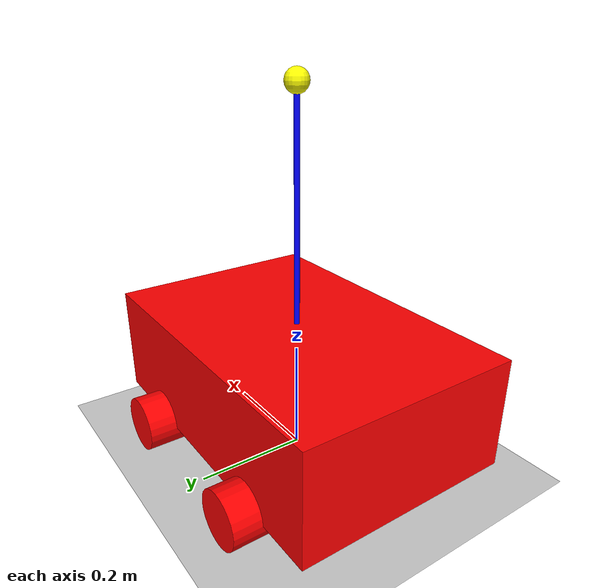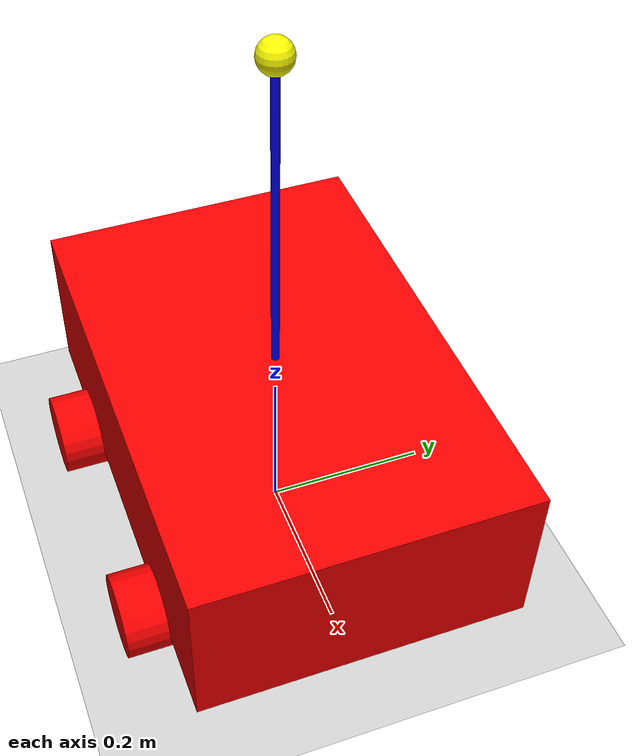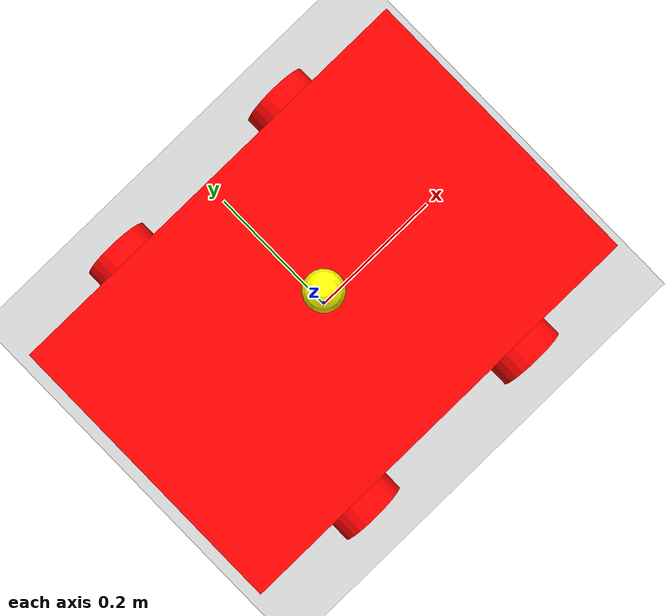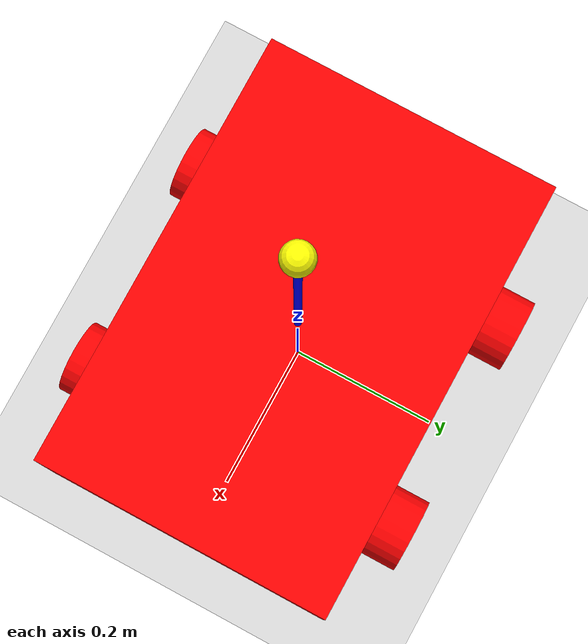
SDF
<sdf version='1.10'>
  <world name='empty'>
    <physics name='1ms' type='ignored'>
      <max_step_size>0.001</max_step_size>
      <real_time_factor>1</real_time_factor>
      <real_time_update_rate>1000</real_time_update_rate>
    </physics>
    <plugin name='gz::sim::systems::Physics' filename='gz-sim-physics-system'/>
    <plugin name='gz::sim::systems::UserCommands' filename='gz-sim-user-commands-system'/>
    <plugin name='gz::sim::systems::SceneBroadcaster' filename='gz-sim-scene-broadcaster-system'/>
    <plugin name='gz::sim::systems::Contact' filename='gz-sim-contact-system'/>
    <plugin filename = "gz-sim-apply-link-wrench-system" name = "gz::sim::systems::ApplyLinkWrench"/>
    <gravity>0 0 -9.8000000000000007</gravity>
    <magnetic_field>5.5644999999999998e-06 2.2875799999999999e-05 -4.2388400000000002e-05</magnetic_field>
    <atmosphere type='adiabatic'/>
    <scene>
      <ambient>0.400000006 0.400000006 0.400000006 1</ambient>
      <background>0.699999988 0.699999988 0.699999988 1</background>
      <shadows>true</shadows>
    </scene>
    <model name='ground_plane'>
      <static>true</static>
      <link name='link'>
        <collision name='collision'>
          <geometry>
            <plane>
              <normal>0 0 1</normal>
              <size>100 100</size>
            </plane>
          </geometry>
          <surface>
            <friction>
              <ode/>
            </friction>
            <bounce/>
            <contact/>
          </surface>
        </collision>
        <visual name='visual'>
          <geometry>
            <plane>
              <normal>0 0 1</normal>
              <size>100 100</size>
            </plane>
          </geometry>
          <material>
            <ambient>0.800000012 0.800000012 0.800000012 1</ambient>
            <diffuse>0.800000012 0.800000012 0.800000012 1</diffuse>
            <specular>0.800000012 0.800000012 0.800000012 1</specular>
          </material>
        </visual>
        <pose>0 0 0 0 0 0</pose>
        <inertial>
          <pose>0 0 0 0 0 0</pose>
          <mass>1</mass>
          <inertia>
            <ixx>1</ixx>
            <ixy>0</ixy>
            <ixz>0</ixz>
            <iyy>1</iyy>
            <iyz>0</iyz>
            <izz>1</izz>
          </inertia>
        </inertial>
        <enable_wind>false</enable_wind>
      </link>
      <pose>0 0 0 0 0 0</pose>
      <self_collide>false</self_collide>
    </model>
    <model name='cartpole_balancer'>
      <link name='base_link'>
        <inertial>
          <pose>0 0 0.14999999999999999 0 0 0</pose>
          <mass>5</mass>
          <inertia>
            <ixx>0.083333333333333329</ixx>
            <ixy>0</ixy>
            <ixz>0</ixz>
            <iyy>0.1666666666666666</iyy>
            <iyz>0</iyz>
            <izz>0.2166666666666667</izz>
          </inertia>
        </inertial>
        <collision name='base_link_fixed_joint_lump__base_link_collision'>
          <pose>0 0 0.14999999999999999 0 0 0</pose>
          <geometry>
            <box>
              <size>0.59999999999999998 0.40000000000000002 0.20000000000000001</size>
            </box>
          </geometry>
          <surface>
            <friction>
              <ode/>
            </friction>
            <bounce/>
            <contact/>
          </surface>
        </collision>
        <visual name='base_link_fixed_joint_lump__visual_visual'>
          <pose>0 0 0.14999999999999999 0 0 0</pose>
          <geometry>
            <box>
              <size>0.59999999999999998 0.40000000000000002 0.20000000000000001</size>
            </box>
          </geometry>
          <material>
            <diffuse>1 0 0 1</diffuse>
            <ambient>1 0 0 1</ambient>
          </material>
        </visual>
        <pose>0 0 0 0 0 0</pose>
        <enable_wind>false</enable_wind>
      </link>
      <joint name='cartpole_base_joint' type='revolute'>
        <pose>0 0 0 0 0 0</pose>
        <parent>base_link</parent>
        <child>cartpole_link</child>
        <axis>
          <xyz>0 1 0</xyz>
          <limit>
            <lower>-0.69999999999999996</lower>
            <upper>0.69999999999999996</upper>
          </limit>
          <dynamics>
            <spring_reference>0</spring_reference>
            <spring_stiffness>0</spring_stiffness>
            <damping>0.5</damping>
            <friction>0</friction>
          </dynamics>
        </axis>
      </joint>
      <link name='cartpole_link'>
        <pose>0 5.8774717541114375e-39 0.25 6.4921011317425931e-45 -2.3361752918385383e-23 -7.5833431280470289e-68</pose>
        <inertial>
          <pose>0 0 0.36666666666666681 0 0 0</pose>
          <mass>0.59999999999999998</mass>
          <inertia>
            <ixx>0.0047472916666666393</ixx>
            <ixy>0</ixy>
            <ixz>0</ixz>
            <iyy>0.0047472916666666393</iyy>
            <iyz>0</iyz>
            <izz>8.125000000000001e-05</izz>
          </inertia>
        </inertial>
        <collision name='cartpole_link_collision'>
          <pose>0 0 0.20000000000000001 0 0 0</pose>
          <geometry>
            <cylinder>
              <length>0.40000000000000002</length>
              <radius>0.0050000000000000001</radius>
            </cylinder>
          </geometry>
          <surface>
            <friction>
              <ode/>
            </friction>
            <bounce/>
            <contact/>
          </surface>
        </collision>
        <collision name='cartpole_link_fixed_joint_lump__bob_link_collision_1'>
          <pose>0 0 0.40000000000000002 0 0 0</pose>
          <geometry>
            <sphere>
              <radius>0.02</radius>
            </sphere>
          </geometry>
          <surface>
            <friction>
              <ode/>
            </friction>
            <bounce/>
            <contact/>
          </surface>
        </collision>
        <visual name='cartpole_link_fixed_joint_lump__visual_visual'>
          <pose>0 0 0.20000000000000001 0 0 0</pose>
          <geometry>
            <cylinder>
              <length>0.40000000000000002</length>
              <radius>0.0050000000000000001</radius>
            </cylinder>
          </geometry>
          <material>
            <diffuse>0 0 1 1</diffuse>
            <ambient>0 0 1 1</ambient>
          </material>
        </visual>
        <visual name='cartpole_link_fixed_joint_lump__visual_visual_1'>
          <pose>0 0 0.40000000000000002 0 0 0</pose>
          <geometry>
            <sphere>
              <radius>0.02</radius>
            </sphere>
          </geometry>
          <material>
            <diffuse>1 1 0 1</diffuse>
            <ambient>1 1 0 1</ambient>
          </material>
        </visual>
        <enable_wind>false</enable_wind>
      </link>
      <joint name='front_left_wheel_joint' type='revolute'>
        <pose>0 0 0 0 0 0</pose>
        <parent>base_link</parent>
        <child>front_left_wheel_link</child>
        <axis>
          <xyz>0 1 0</xyz>
          <limit>
            <lower>-inf</lower>
            <upper>inf</upper>
            <effort>inf</effort>
            <velocity>inf</velocity>
            <stiffness>100000000</stiffness>
            <dissipation>1</dissipation>
          </limit>
          <dynamics>
            <spring_reference>0</spring_reference>
            <spring_stiffness>0</spring_stiffness>
            <damping>0</damping>
            <friction>0</friction>
          </dynamics>
        </axis>
      </joint>
      <link name='front_left_wheel_link'>
        <pose>0.14999999999999999 0.20000000000000001 0.049999999999999989 -8.3981465539371425e-43 3.022063593652105e-21 -1.2689866477404162e-63</pose>
        <inertial>
          <pose>0 0 0 0 0 0</pose>
          <mass>1</mass>
          <inertia>
            <ixx>0.001458333333333333</ixx>
            <ixy>0</ixy>
            <ixz>0</ixz>
            <iyy>0.001458333333333333</iyy>
            <iyz>0</iyz>
            <izz>0.00125</izz>
          </inertia>
        </inertial>
        <collision name='front_left_wheel_link_collision'>
          <pose>0 0 0 1.5707963267948959 0 0</pose>
          <geometry>
            <cylinder>
              <length>0.10000000000000001</length>
              <radius>0.050000000000000003</radius>
            </cylinder>
          </geometry>
          <surface>
            <friction>
              <ode/>
            </friction>
            <bounce/>
            <contact/>
          </surface>
        </collision>
        <visual name='front_left_wheel_link_fixed_joint_lump__visual_2_visual'>
          <pose>0 0 0 1.5707963267948959 0 0</pose>
          <geometry>
            <cylinder>
              <length>0.10000000000000001</length>
              <radius>0.050000000000000003</radius>
            </cylinder>
          </geometry>
          <material>
            <diffuse>1 0 0 1</diffuse>
            <ambient>1 0 0 1</ambient>
          </material>
        </visual>
        <enable_wind>false</enable_wind>
      </link>
      <joint name='front_right_wheel_joint' type='revolute'>
        <pose>0 0 0 0 0 0</pose>
        <parent>base_link</parent>
        <child>front_right_wheel_link</child>
        <axis>
          <xyz>0 1 0</xyz>
          <limit>
            <lower>-inf</lower>
            <upper>inf</upper>
            <effort>inf</effort>
            <velocity>inf</velocity>
            <stiffness>100000000</stiffness>
            <dissipation>1</dissipation>
          </limit>
          <dynamics>
            <spring_reference>0</spring_reference>
            <spring_stiffness>0</spring_stiffness>
            <damping>0</damping>
            <friction>0</friction>
          </dynamics>
        </axis>
      </joint>
      <link name='front_right_wheel_link'>
        <pose>0.14999999999999999 -0.20000000000000001 0.049999999999999989 3.8835203561714517e-43 -1.3974804331189625e-21 -2.713571854684394e-64</pose>
        <inertial>
          <pose>0 0 0 0 0 0</pose>
          <mass>1</mass>
          <inertia>
            <ixx>0.001458333333333333</ixx>
            <ixy>0</ixy>
            <ixz>0</ixz>
            <iyy>0.001458333333333333</iyy>
            <iyz>0</iyz>
            <izz>0.00125</izz>
          </inertia>
        </inertial>
        <collision name='front_right_wheel_link_collision'>
          <pose>0 0 0 1.5707963267948959 0 0</pose>
          <geometry>
            <cylinder>
              <length>0.10000000000000001</length>
              <radius>0.050000000000000003</radius>
            </cylinder>
          </geometry>
          <surface>
            <friction>
              <ode/>
            </friction>
            <bounce/>
            <contact/>
          </surface>
        </collision>
        <visual name='front_right_wheel_link_fixed_joint_lump__visual_2_visual'>
          <pose>0 0 0 1.5707963267948959 0 0</pose>
          <geometry>
            <cylinder>
              <length>0.10000000000000001</length>
              <radius>0.050000000000000003</radius>
            </cylinder>
          </geometry>
          <material>
            <diffuse>1 0 0 1</diffuse>
            <ambient>1 0 0 1</ambient>
          </material>
        </visual>
        <enable_wind>false</enable_wind>
      </link>
      <joint name='rear_left_wheel_joint' type='revolute'>
        <pose>0 0 0 0 0 0</pose>
        <parent>base_link</parent>
        <child>rear_left_wheel_link</child>
        <axis>
          <xyz>0 1 0</xyz>
          <limit>
            <lower>-inf</lower>
            <upper>inf</upper>
            <effort>inf</effort>
            <velocity>inf</velocity>
            <stiffness>100000000</stiffness>
            <dissipation>1</dissipation>
          </limit>
          <dynamics>
            <spring_reference>0</spring_reference>
            <spring_stiffness>0</spring_stiffness>
            <damping>0</damping>
            <friction>0</friction>
          </dynamics>
        </axis>
      </joint>
      <link name='rear_left_wheel_link'>
        <pose>-0.14999999999999999 0.20000000000000001 0.049999999999999989 -8.4143263694486834e-43 3.027885882069603e-21 -1.2738810010589824e-63</pose>
        <inertial>
          <pose>0 0 0 0 0 0</pose>
          <mass>1</mass>
          <inertia>
            <ixx>0.001458333333333333</ixx>
            <ixy>0</ixy>
            <ixz>0</ixz>
            <iyy>0.001458333333333333</iyy>
            <iyz>0</iyz>
            <izz>0.00125</izz>
          </inertia>
        </inertial>
        <collision name='rear_left_wheel_link_collision'>
          <pose>0 0 0 1.5707963267948959 0 0</pose>
          <geometry>
            <cylinder>
              <length>0.10000000000000001</length>
              <radius>0.050000000000000003</radius>
            </cylinder>
          </geometry>
          <surface>
            <friction>
              <ode/>
            </friction>
            <bounce/>
            <contact/>
          </surface>
        </collision>
        <visual name='rear_left_wheel_link_fixed_joint_lump__visual_2_visual'>
          <pose>0 0 0 1.5707963267948959 0 0</pose>
          <geometry>
            <cylinder>
              <length>0.10000000000000001</length>
              <radius>0.050000000000000003</radius>
            </cylinder>
          </geometry>
          <material>
            <diffuse>1 0 0 1</diffuse>
            <ambient>1 0 0 1</ambient>
          </material>
        </visual>
        <enable_wind>false</enable_wind>
      </link>
      <joint name='rear_right_wheel_joint' type='revolute'>
        <pose>0 0 0 0 0 0</pose>
        <parent>base_link</parent>
        <child>rear_right_wheel_link</child>
        <axis>
          <xyz>0 1 0</xyz>
          <limit>
            <lower>-inf</lower>
            <upper>inf</upper>
            <effort>inf</effort>
            <velocity>inf</velocity>
            <stiffness>100000000</stiffness>
            <dissipation>1</dissipation>
          </limit>
          <dynamics>
            <spring_reference>0</spring_reference>
            <spring_stiffness>0</spring_stiffness>
            <damping>0</damping>
            <friction>0</friction>
          </dynamics>
        </axis>
      </joint>
      <link name='rear_right_wheel_link'>
        <pose>-0.14999999999999999 -0.20000000000000001 0.049999999999999989 3.8755941669953255e-43 -1.3946282028569957e-21 -2.7025064640598732e-64</pose>
        <inertial>
          <pose>0 0 0 0 0 0</pose>
          <mass>1</mass>
          <inertia>
            <ixx>0.001458333333333333</ixx>
            <ixy>0</ixy>
            <ixz>0</ixz>
            <iyy>0.001458333333333333</iyy>
            <iyz>0</iyz>
            <izz>0.00125</izz>
          </inertia>
        </inertial>
        <collision name='rear_right_wheel_link_collision'>
          <pose>0 0 0 1.5707963267948959 0 0</pose>
          <geometry>
            <cylinder>
              <length>0.10000000000000001</length>
              <radius>0.050000000000000003</radius>
            </cylinder>
          </geometry>
          <surface>
            <friction>
              <ode/>
            </friction>
            <bounce/>
            <contact/>
          </surface>
        </collision>
        <visual name='rear_right_wheel_link_fixed_joint_lump__visual_2_visual'>
          <pose>0 0 0 1.5707963267948959 0 0</pose>
          <geometry>
            <cylinder>
              <length>0.10000000000000001</length>
              <radius>0.050000000000000003</radius>
            </cylinder>
          </geometry>
          <material>
            <diffuse>1 0 0 1</diffuse>
            <ambient>1 0 0 1</ambient>
          </material>
        </visual>
        <enable_wind>false</enable_wind>
      </link>
      <frame name='root_base_joint' attached_to='base_link'>
        <pose>0 0 0.14999999999999999 0 0 0</pose>
      </frame>
      <frame name='root_link' attached_to='root_base_joint'>
        <pose>0 0 0 0 0 0</pose>
      </frame>
      <frame name='bob_cartpole_joint' attached_to='cartpole_link'>
        <pose>0 0 0.40000000000000002 0 0 0</pose>
      </frame>
      <frame name='bob_link' attached_to='bob_cartpole_joint'>
        <pose>0 0 0 0 0 0</pose>
      </frame>
      <pose>-1.5008390384418604e-23 -4.9978272794295565e-23 -3.2605587544157215e-11 2.7601813337771729e-21 3.7726061837537096e-23 -5.5578887033202014e-22</pose>
      <static>false</static>
      <self_collide>false</self_collide>
      <plugin filename = "gz-sim-pose-publisher-system" name = "gz::sim::systems::PosePublisher">
        <publish_link_pose>true</publish_link_pose>
        <update_frequency>-1</update_frequency>
        <use_pose_vector_msg>true</use_pose_vector_msg>
      </plugin>
      <plugin filename = "gz-sim-joint-state-publisher-system" name = "gz::sim::systems::JointStatePublisher">
      </plugin>
      <plugin filename = "gz-sim-diff-drive-system" name = "gz::sim::systems::DiffDrive">
        <left_joint>rear_left_wheel_joint</left_joint>
        <right_joint>rear_right_wheel_joint</right_joint>
        <wheel_seperation>0.4</wheel_seperation>
        <wheel_radius>0.05</wheel_radius>
      </plugin>
    </model>

    <light name='sun' type='directional'>
      <pose>0 0 10 0 0 0</pose>
      <cast_shadows>true</cast_shadows>
      <intensity>1</intensity>
      <direction>-0.5 0.10000000000000001 -0.90000000000000002</direction>
      <diffuse>0.800000012 0.800000012 0.800000012 1</diffuse>
      <specular>0.200000003 0.200000003 0.200000003 1</specular>
      <attenuation>
        <range>1000</range>
        <linear>0.01</linear>
        <constant>0.90000000000000002</constant>
        <quadratic>0.001</quadratic>
      </attenuation>
      <spot>
        <inner_angle>0</inner_angle>
        <outer_angle>0</outer_angle>
        <falloff>0</falloff>
      </spot>
    </light>
  </world>
</sdf>
